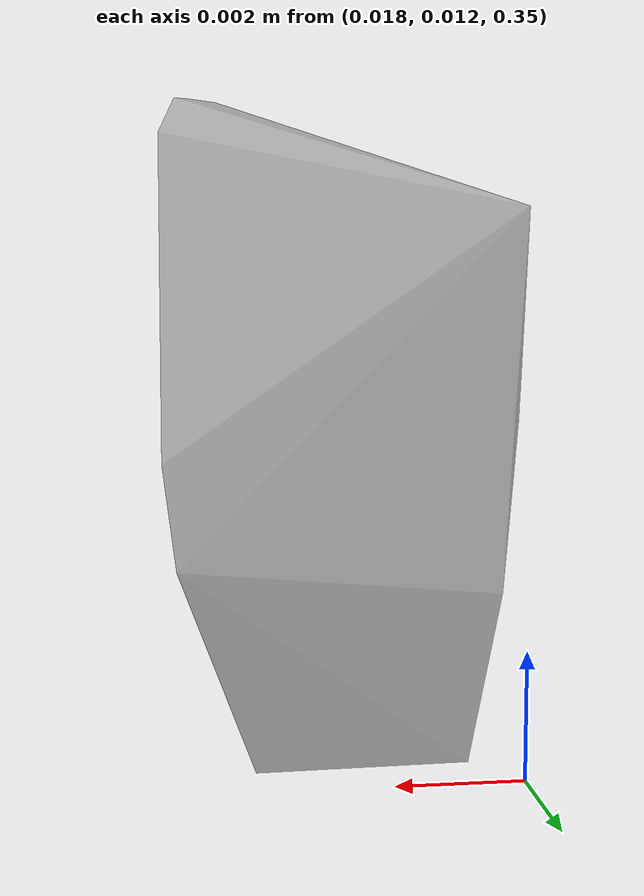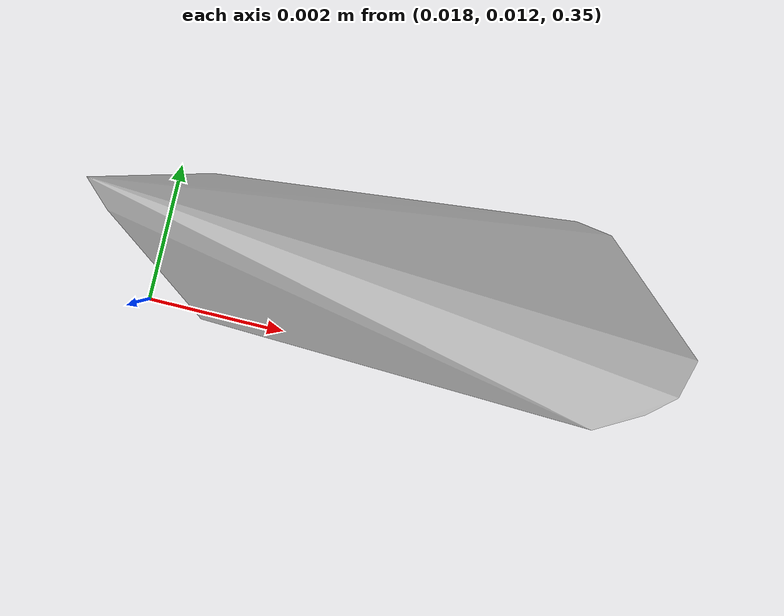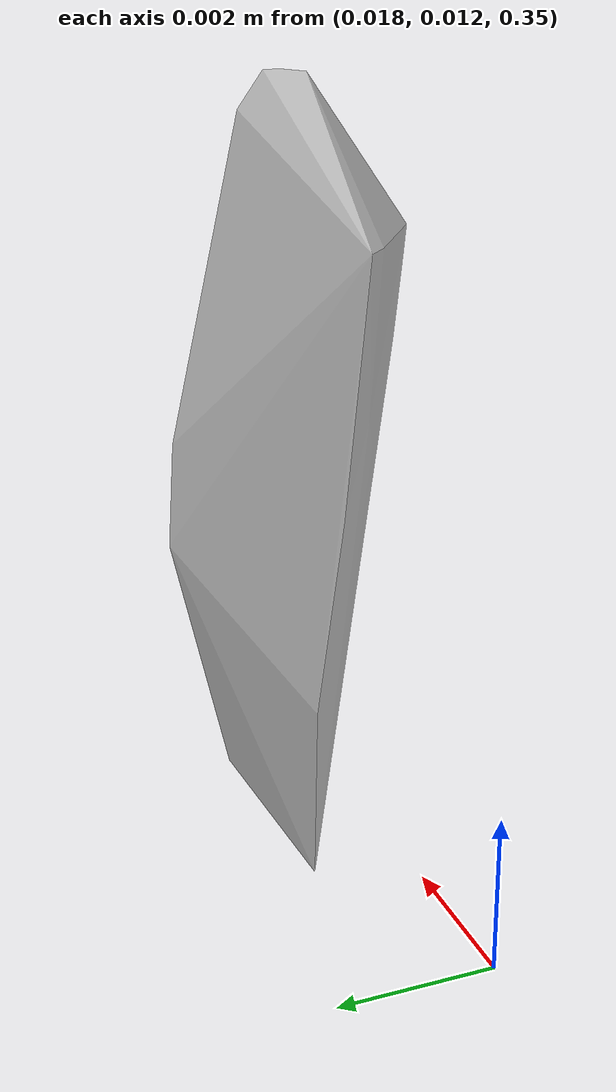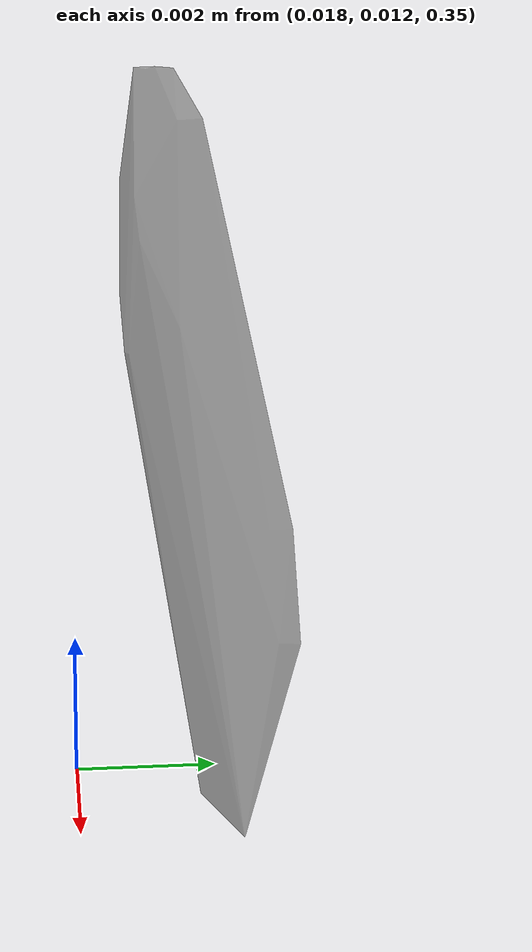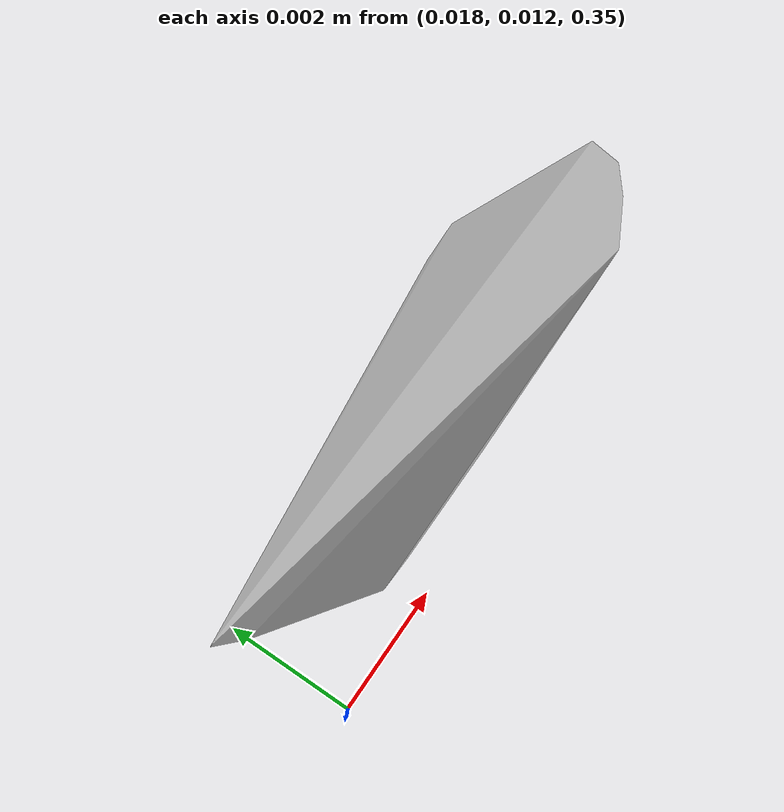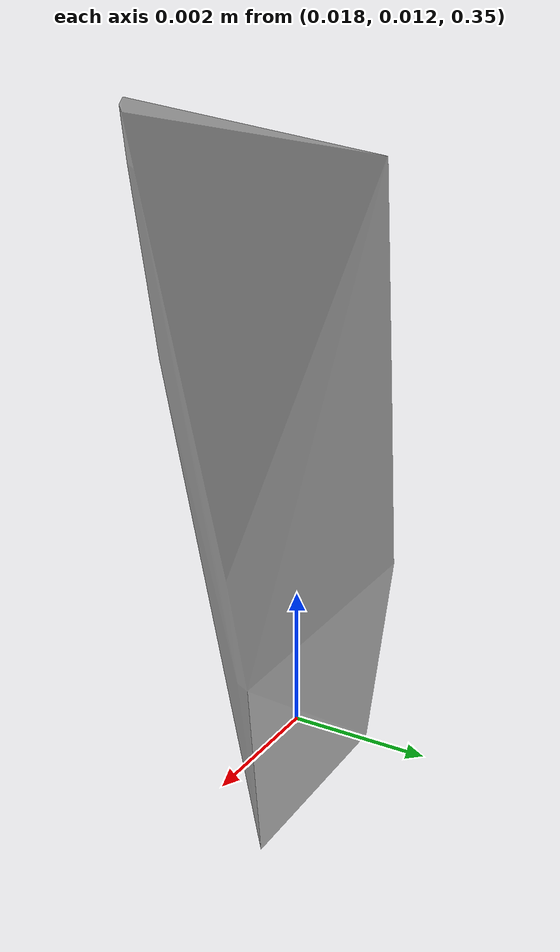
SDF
<?xml version="1.0"?>
<sdf version="1.7">
  <model name="vascular_partexport006">
    <link name="vascular_partexport006_body">
      <visual name="vascular_partexport006_visual">
        <geometry>
          <mesh>
            <uri>vascular_partexport006.obj</uri>
          </mesh>
        </geometry>
      </visual>
      <collision name="vascular_partexport006_collision">
        <geometry>
          <mesh>
            <uri>vascular_partexport006.obj</uri>
          </mesh>
        </geometry>
      </collision>
    </link>
    <frame name="vascular_partexport006_center">
      <pose relative_to="vascular_partexport006_body">0 0 0 0 0 0</pose>
    </frame>
  </model>
</sdf>
